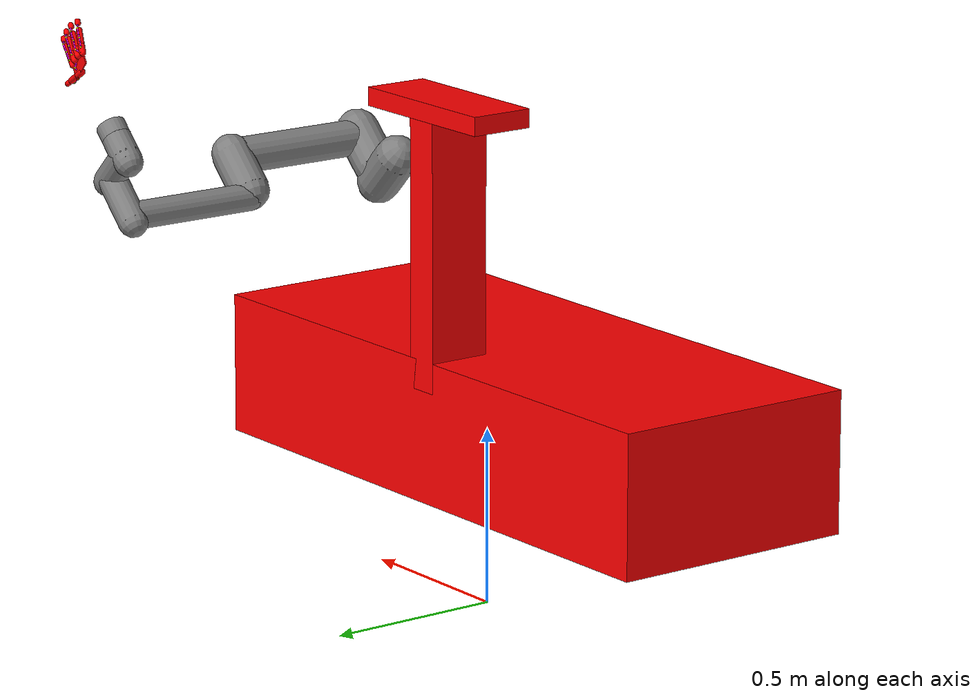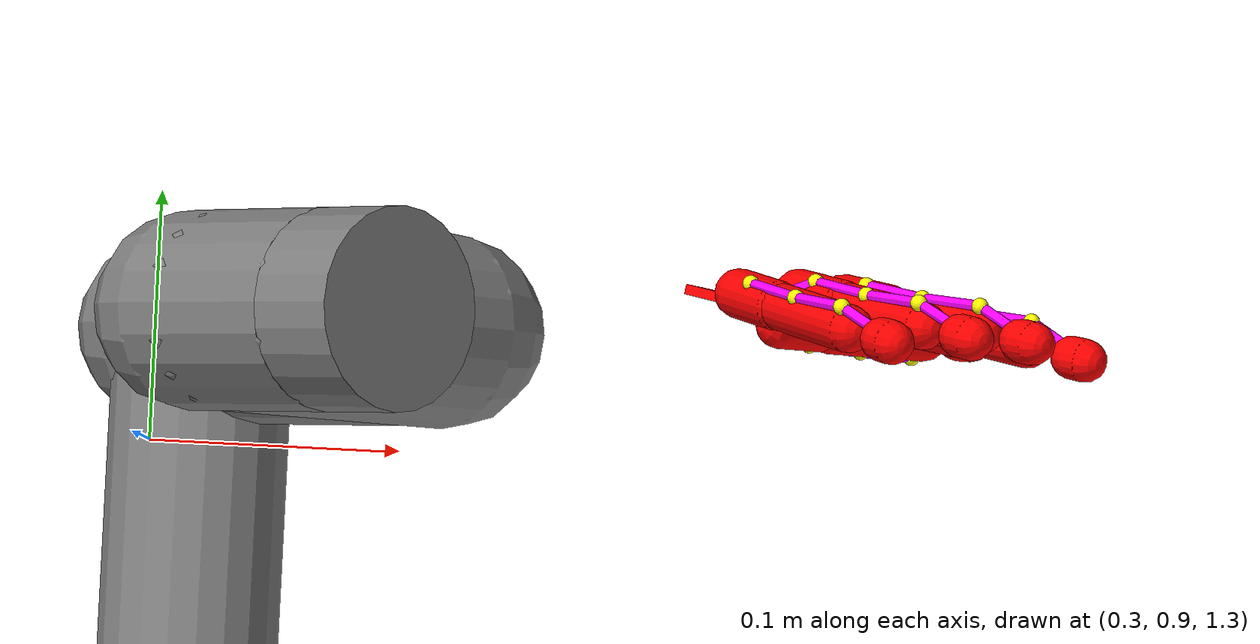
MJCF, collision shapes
<?xml version="1.0"?>

<mujoco model="UR5e_with_RH8D">
  <compiler angle="radian" meshdir="../meshes"/>
   <option timestep="0.001"
        integrator="implicitfast"
        solver="Newton"
        iterations="200"
        tolerance="1e-10"
        gravity="0 0 -9.81"
        cone="elliptic"
        impratio="1"
        noslip_iterations="0"
        noslip_tolerance="1e-6"/>
  <size njmax="8000" nconmax="1500"/>

  <!-- Default parameters for the simulation -->
  <default>
    <joint damping="0.04" frictionloss="0.0008" armature="0.002" limited="true" springref="0"/>
    <geom contype="1" conaffinity="1" condim="6"
          friction="1.0 0.1 0.1"
          solref="0.01 1.0"
          solimp="0.9 0.95 0.001"
          margin="0.0005"/>

    <!-- UR5e: default parameters: -->
    <default class="ur5e">
      <material specular="0.5" shininess="0.25"/>
      <joint axis="0 1 0" range="-6.28319 6.28319" armature="0.1"/>
      <general gaintype="fixed" biastype="affine" ctrlrange="-6.2831 6.2831" gainprm="2000" biasprm="0 -2000 -400"
        forcerange="-150 150"/>

      <default class="size3">
        <default class="size3_limited">
          <joint range="-3.1415 3.1415"/>
          <general ctrlrange="-3.1415 3.1415"/>
        </default>
      </default>

      <default class="size1">
        <general gainprm="500" biasprm="0 -500 -100" forcerange="-28 28"/>
      </default>

      <default class="visual">
        <geom type="mesh" contype="0" conaffinity="0" group="2"/>
      </default>

      <default class="collision">
        <geom type="capsule" group="3"/>
        <default class="eef_collision">
          <geom type="cylinder"/>
        </default>
      </default>

      <site size="0.001" rgba="0.5 0.5 0.5 0.3" group="4"/>
    </default>

    <!-- RH8D: default parameters: -->
    <default class="guide_site">
      <site size="0.0030" rgba="1 1 0 1"/>
    </default>

    <default class="anchor_site">
      <site size="0.0045" rgba="1 0.2 0.2 1"/>
    </default>

    <default class="visual_mesh">
      <geom type="mesh" contype="0" conaffinity="0"/>
    </default>

    <default class="hand_collision">
      <geom type="capsule"
            contype="2" conaffinity="5"
            condim="6"
            friction="0.5 0.05 0.05"
            solref="0.001 1"
            solimp="0.95 0.99 0.001"
            margin="0.0005"
            rgba="1 0 0 0"/>
    </default>
  </default>

  <!-- Asset definitions -->
  <asset>
    <!-- Table: material/meshes -->
    <material name="table" rgba="0.55 0.62 0.75 1.0" reflectance="0.18" shininess="0.1" specular="0.06"/>
    <mesh name="table_visual" file="table/visual/table_visual.stl" scale="0.001 0.001 0.001"/>
    <mesh name="table_collision" file="table/collision/table_collision.stl" scale="0.001 0.001 0.001"/>

    <!-- UR5e: materials/meshes -->
    <material class="ur5e" name="black" rgba="0.033 0.033 0.033 1"/>
    <material class="ur5e" name="jointgray" rgba="0.278 0.278 0.278 1"/>
    <material class="ur5e" name="linkgray" rgba="0.82 0.82 0.82 1"/>
    <material class="ur5e" name="urblue" rgba="0.49 0.678 0.8 1"/>
    <mesh file="ur5e/assets/base_0.obj"/>
    <mesh file="ur5e/assets/base_1.obj"/>
    <mesh file="ur5e/assets/shoulder_0.obj"/>
    <mesh file="ur5e/assets/shoulder_1.obj"/>
    <mesh file="ur5e/assets/shoulder_2.obj"/>
    <mesh file="ur5e/assets/upperarm_0.obj"/>
    <mesh file="ur5e/assets/upperarm_1.obj"/>
    <mesh file="ur5e/assets/upperarm_2.obj"/>
    <mesh file="ur5e/assets/upperarm_3.obj"/>
    <mesh file="ur5e/assets/forearm_0.obj"/>
    <mesh file="ur5e/assets/forearm_1.obj"/>
    <mesh file="ur5e/assets/forearm_2.obj"/>
    <mesh file="ur5e/assets/forearm_3.obj"/>
    <mesh file="ur5e/assets/wrist1_0.obj"/>
    <mesh file="ur5e/assets/wrist1_1.obj"/>
    <mesh file="ur5e/assets/wrist1_2.obj"/>
    <mesh file="ur5e/assets/wrist2_0.obj"/>
    <mesh file="ur5e/assets/wrist2_1.obj"/>
    <mesh file="ur5e/assets/wrist2_2.obj"/>
    <mesh file="ur5e/assets/wrist3.obj"/>

    <!-- RH8D: meshes -->
    <mesh name="base" file="rh8d/base.stl" scale="0.001 0.001 0.001"/>
    <mesh name="forearm" file="rh8d/forearm.stl" scale="0.001 0.001 0.001"/>
    <mesh name="palm_axis" file="rh8d/palm_axis.stl" scale="0.001 0.001 0.001"/>
    <mesh name="palm_assembly" file="rh8d/palm_assembly.stl" scale="0.001 0.001 0.001"/>
    <mesh name="thumb_base" file="rh8d/thumb_base.stl" scale="0.001 0.001 0.001"/>
    <mesh name="thumb_phalanx" file="rh8d/thumb_phalanx.stl" scale="0.001 0.001 0.001"/>
    <mesh name="tip" file="rh8d/tip.stl" scale="0.001 0.001 0.001"/>
    <mesh name="phalanx" file="rh8d/phalanx.stl" scale="0.001 0.001 0.001"/>
  </asset>

  <!-- World body definitions -->
  <worldbody>
    <light name="spotlight" mode="targetbodycom" target="wrist_2_link" pos="0 -1 2"/>

    <!-- Table: -->
    <body name="table" pos="0 0 0.73" euler="0 0 0">
      <geom name="table_visual" type="mesh" mesh="table_visual" material="table" contype="0" conaffinity="0"
            group="1"/>
      <geom name="table_base_collision" type="box" pos="0 -0.135 -0.2" size="0.90 0.36 0.2" rgba="1 0 0 0"
            contype="1" conaffinity="1"/>
      <geom name="table_column_collision" type="box" pos="0 0.135 0.315" size="0.05 0.09 0.400" rgba="1 0 0 0"
            contype="1" conaffinity="1"/>
      <geom name="table_top_collision" type="box" pos="0.0 0.135 0.69" size="0.24 0.091 0.026" rgba="1 0 0 0"
            contype="1" conaffinity="1"/>

      <!-- UR5e: -->
      <body name="ur5e_mounting_point" pos="0.191189 0.13475 0.555131" quat="-0.270598 -0.653281 -0.653281 -0.270598">
        <body name="base" quat="1 0 0 0" childclass="ur5e">
        <inertial mass="4.0" pos="0 0 0" diaginertia="0.00443333156 0.00443333156 0.0072"/>
        <geom mesh="base_0" material="black" class="visual"/>
        <geom mesh="base_1" material="jointgray" class="visual"/>
        <body name="shoulder_link" pos="0 0 0.163">
          <inertial mass="3.7" pos="0 0 0" diaginertia="0.0102675 0.0102675 0.00666"/>
          <joint name="shoulder_pan_joint" class="size3" axis="0 0 1"/>
          <geom mesh="shoulder_0" material="urblue" class="visual"/>
          <geom mesh="shoulder_1" material="black" class="visual"/>
          <geom mesh="shoulder_2" material="jointgray" class="visual"/>
          <geom class="collision" size="0.06 0.06" pos="0 0 -0.04"/>
          <body name="upper_arm_link" pos="0 0.138 0" quat="1 0 1 0">
            <inertial mass="8.393" pos="0 0 0.2125" diaginertia="0.133886 0.133886 0.0151074"/>
            <joint name="shoulder_lift_joint" class="size3"/>
            <geom mesh="upperarm_0" material="linkgray" class="visual"/>
            <geom mesh="upperarm_1" material="black" class="visual"/>
            <geom mesh="upperarm_2" material="jointgray" class="visual"/>
            <geom mesh="upperarm_3" material="urblue" class="visual"/>
            <geom class="collision" pos="0 -0.04 0" quat="1 1 0 0" size="0.06 0.06"/>
            <geom class="collision" size="0.05 0.2" pos="0 0 0.2"/>
            <body name="forearm_link" pos="0 -0.131 0.425">
              <inertial mass="2.275" pos="0 0 0.196" diaginertia="0.0311796 0.0311796 0.004095"/>
              <joint name="elbow_joint" class="size3_limited"/>
              <geom mesh="forearm_0" material="urblue" class="visual"/>
              <geom mesh="forearm_1" material="linkgray" class="visual"/>
              <geom mesh="forearm_2" material="black" class="visual"/>
              <geom mesh="forearm_3" material="jointgray" class="visual"/>
              <geom class="collision" pos="0 0.08 0" quat="1 1 0 0" size="0.055 0.06"/>
              <geom class="collision" size="0.038 0.19" pos="0 0 0.2"/>
              <body name="wrist_1_link" pos="0 0 0.392" quat="1 0 1 0">
                <inertial mass="1.219" pos="0 0.127 0" diaginertia="0.0025599 0.0025599 0.0021942"/>
                <joint name="wrist_1_joint" class="size1"/>
                <geom mesh="wrist1_0" material="black" class="visual"/>
                <geom mesh="wrist1_1" material="urblue" class="visual"/>
                <geom mesh="wrist1_2" material="jointgray" class="visual"/>
                <geom class="collision" pos="0 0.05 0" quat="1 1 0 0" size="0.04 0.07"/>
                <body name="wrist_2_link" pos="0 0.127 0">
                  <inertial mass="1.219" pos="0 0 0.1" diaginertia="0.0025599 0.0025599 0.0021942"/>
                  <joint name="wrist_2_joint" axis="0 0 1" class="size1"/>
                  <geom mesh="wrist2_0" material="black" class="visual"/>
                  <geom mesh="wrist2_1" material="urblue" class="visual"/>
                  <geom mesh="wrist2_2" material="jointgray" class="visual"/>
                  <geom class="collision" size="0.04 0.06" pos="0 0 0.04"/>
                  <geom class="collision" pos="0 0.02 0.1" quat="1 1 0 0" size="0.04 0.04"/>
                  <body name="wrist_3_link" pos="0 0 0.1">
                    <inertial mass="0.1889" pos="0 0.0771683 0" quat="1 0 0 1" diaginertia="0.000132134 9.90863e-05 9.90863e-05"/>
                    <joint name="wrist_3_joint" class="size1"/>
                    <geom material="linkgray" mesh="wrist3" class="visual"/>
                    <geom class="eef_collision" pos="0 0.08 0" quat="1 1 0 0" size="0.04 0.02"/>
                    <site name="attachment_site" pos="0 0.1 0" quat="-1 1 0 0"/>

                    <!-- RH8D: -->
                    <body name="rh8d_mounting_point" pos="0 0.1 0" quat="0 -0.707107 0 -0.707107">
                      <geom class="visual_mesh" pos="0 0 0" quat="1 0 0 0" rgba="0.74902 0.74902 0.74902 1" mesh="base"/>
                      <body name="forearm:1" pos="0 0 0" quat="1 0 0 0">
                        <inertial pos="1.87963e-07 -0.0656522 -0.00271352" quat="0.498346 0.501671 -0.501575 0.498397"
                                  mass="0.740385" diaginertia="0.00146215 0.00130925 0.000680264"/>
                        <joint name="forearm:1--base:1" axis="0 -1 0" range="-1.5708 1.5708" damping="0.08" frictionloss="0.005"/>
                        <geom class="visual_mesh" rgba="0.74902 0.74902 0.74902 1" mesh="forearm"/>

                        <body name="palm_axis:1" pos="0 -0.165 -0.01275">
                          <inertial pos="0 0.008585 0.0125"
                                    quat="0 0.707107 0 0.707107"
                                    mass="0.0509809"
                                    diaginertia="1.88432e-05 1.37535e-05 9.79681e-06"/>
                          <joint name="palm_axis:1--forearm:1" axis="0 0 1" range="-1.5708 1.5708" damping="0.08" frictionloss="0.005"/>
                          <geom class="visual_mesh" pos="0 0 0.0125" quat="1 0 0 0" rgba="0.74902 0.74902 0.74902 1" mesh="palm_axis"/>

                          <body name="palm_assembly:1" pos="0.0265 0 0.0125" quat="0.764847 0.63682 0.022682 -0.094633">
                            <inertial pos="-0.0428433 -0.00466111 0.0454719"
                                      quat="0.48276 0.542533 0.210306 0.654502"
                                      mass="0.0820994"
                                      diaginertia="9.95214e-05 8.17343e-05 3.63353e-05"/>
                            <joint name="palm_assembly:1--palm_axis:1"
                                  axis="-0.98106 -0.173648 0.0858319"
                                  range="-0.785398 0.785398"
                                  damping="0.08" frictionloss="0.005"/>
                            <geom class="visual_mesh"
                                  pos="-0.0586362 -0.00572413 0.0653212"
                                  quat="1 0 0 0"
                                  rgba="0.74902 0.74902 0.74902 1"
                                  mesh="palm_assembly"/>

                            <!-- Palm collision -->
                            <geom name="collision_palm" class="hand_collision" type="box"
                                  pos="-0.03 -0.01 0.055"
                                  euler="-1.57 -0.1 0.1"
                                  size="0.04 0.035 0.0018"
                                  rgba="1 0 0 0"/>

                            <!-- Tendon origins -->
                            <site name="palm_flexor_origin_idx"        class="guide_site" pos="-0.052 -0.009 0.0685"/>
                            <site name="palm_flexor_origin_mid"        class="guide_site" pos="-0.032 -0.009 0.068"/>
                            <site name="palm_flexor_origin_ring_small" class="guide_site" pos=" 0.006 -0.009 0.053"/>
                            <site name="palm_flexor_origin_thumb"      class="guide_site" pos="-0.034 -0.007 0.07"/>

                            <site name="palm_range_site" pos="-0.0210 -0.009 0.0475" euler="-1.45 -0.2 0.5" size="0.003" rgba="0 0 1 1"/>
                            <!-- Thumb -->
                            <body name="Thumb_axis" pos="-0.0403593 -0.0128548 0.0384218" quat="0.488081 0.532913 -0.239627 -0.648352">
                              <inertial pos="7.36614e-07 -0.0127284 0.0077996"
                                        quat="0.90682 0.421512 -0.00114761 0.00208364"
                                        mass="0.00876232"
                                        diaginertia="7.9766e-07 7.76944e-07 4.56571e-07"/>
                              <joint name="Thumb_axis--palm_assembly:1" axis="0 -0.866025 0.5" range="-0.001 1.5708" damping="0.60" frictionloss="0.005"/>
                              <geom class="visual_mesh" pos="-2.0491e-07 -0.0143541 0.0211785" rgba="0.74902 0.74902 0.74902 1" mesh="thumb_base"/>

                              <site name="th_guide_p" class="guide_site" pos="0.000 0.0060 0.0120"/>

                              <body name="Thumb_Methacarpal" pos="-0.00512514 -0.0143543 0.0211784" quat="0 -1 0 0">
                                <inertial pos="0.00506187 -0.00020374 -0.0087338"
                                          quat="0.707662 0.0382635 -0.0379957 0.70449"
                                          mass="0.00441372"
                                          diaginertia="4.34031e-07 4.06754e-07 1.50155e-07"/>
                                <joint name="Thumb_Methacarpal--Thumb_axis" axis="-1 0 0" range="0 1.5708" damping="0.60" stiffness="0.65"/>
                                <geom class="visual_mesh" pos="0.00506254 1.23613e-07 -0.010793" rgba="0.74902 0.74902 0.74902 1" mesh="thumb_phalanx"/>
                                <geom name="collision_thumb_meta" class="hand_collision" type="capsule"
                                      fromto="0.005 0 0.002   0.005 0 0.026" size="0.009" rgba="1 0 0 0"/>

                                <site name="th_guide_m" class="guide_site" pos="0.000 0.0060 0.0100"/>

                                <body name="Thumb_Proximal" pos="-0.000562562 -2.35897e-07 -0.0215861">
                                  <inertial pos="0.00506186 -0.000203737 -0.0087338"
                                            quat="0.707662 0.0382635 -0.0379957 0.70449"
                                            mass="0.00441372"
                                            diaginertia="4.34031e-07 4.06754e-07 1.50155e-07"/>
                                  <joint name="Thumb_Proximal--Thumb_Methacarpal" axis="-1 0 0" range="0 1.5708" damping="0.58" stiffness="0.55"/>
                                  <geom class="visual_mesh" pos="0.00506253 1.26601e-07 -0.010793" rgba="0.74902 0.74902 0.74902 1" mesh="thumb_phalanx"/>
                                  <geom name="collision_thumb_prox" class="hand_collision" type="capsule"
                                        fromto="0.005 0 -0.016   0.005 0 0.026" size="0.009" rgba="1 0 0 0"/>

                                  <site name="th_guide_d" class="guide_site" pos="0.000 0.0075 0.0080"/>

                                  <body name="Thumb_Distal" pos="-6.23674e-05 6.16563e-07 -0.0215858">
                                    <inertial pos="0.00560256 -0.00262057 -0.0121248"
                                              quat="0.634633 -0.0915234 0.0968285 0.761242"
                                              mass="0.00650951"
                                              diaginertia="5.45458e-07 5.01126e-07 3.14326e-07"/>
                                    <joint name="Thumb_Distal--Thumb_Proximal" axis="-1 0 0" range="0 1.5708" damping="0.56" stiffness="0.45"/>
                                    <geom class="visual_mesh" pos="0.00506251 -1.31623e-07 0" rgba="0.74902 0.74902 0.74902 1" mesh="tip"/>

                                    <site name="th_guide_distal" class="guide_site" pos="0.000 0.0090 0.0060"/>
                                    <site name="th_anchor" class="anchor_site" pos="0.0045 0.0015 -0.012"/>

                                    <body name="Thumb_TipDummy" pos="0 0 0">
                                      <inertial pos="0 0 0" mass="1e-6" diaginertia="1e-12 1e-12 1e-12"/>
                                      <geom name="collision_thumb_tip" class="hand_collision" type="capsule"
                                            fromto="0.005 0 -0.016   0.005 0 -0.01" size="0.00778" rgba="1 0 0 0"/>
                                      <site name="thumb_tip_force_site" pos="0.005 -0.0015 -0.014" quat="0 0 1 1" size="0.00778" rgba="1 0 0 0"/>
                                    </body>
                                  </body>
                                </body>
                              </body>
                            </body>

                            <!-- Index Finger -->
                            <body name="Index_Proximal" pos="-0.0482113 -0.0207166 0.0857786" quat="0 1 0 0">
                              <inertial pos="-0.00506278 -0.000180346 -0.0109169"
                                        quat="0.709609 0.0289913 -0.0286909 0.703414"
                                        mass="0.00525864"
                                        diaginertia="5.65636e-07 5.33996e-07 1.82249e-07"/>
                              <joint name="Index_Proximal--palm_assembly:1" axis="-1 0 0" range="0 1.5708" damping="0.60" stiffness="0.65"/>
                              <geom class="visual_mesh" pos="-0.00506263 -1.44878e-07 -0.0129367" rgba="0.74902 0.74902 0.74902 1" mesh="phalanx"/>
                              <geom name="collision_idx_prox" class="hand_collision" type="capsule"
                                    fromto="-0.005 0 0.002   -0.005 0 0.026" size="0.00778" rgba="1 0 0 0"/>

                              <site name="idx_guide_p" class="guide_site" pos="0.000 0.0065 0.0120"/>

                              <body name="Index_Middle" pos="6.24645e-05 0 -0.0258748">
                                <inertial pos="-0.00506279 -0.000180375 -0.0109169"
                                          quat="0.709609 0.0289913 -0.0286909 0.703414"
                                          mass="0.00525864"
                                          diaginertia="5.65636e-07 5.33996e-07 1.82249e-07"/>
                                <joint name="Index_Middle--Index_Proximal" axis="-1 0 0" range="0 1.5708" damping="0.58" stiffness="0.55"/>
                                <geom class="visual_mesh" pos="-0.00506242 0 -0.0129376" rgba="0.74902 0.74902 0.74902 1" mesh="phalanx"/>
                                <geom name="collision_idx_mid" class="hand_collision" type="capsule"
                                      fromto="-0.005 0 -0.016   -0.005 0 0.026" size="0.00778" rgba="1 0 0 0"/>

                                <site name="idx_guide_m" class="guide_site" pos="0.000 0.0065 0.0100"/>

                                <body name="Index_Distal" pos="6.2463e-05 0 -0.0258748">
                                  <inertial pos="-0.00452224 -0.00262003 -0.0121245"
                                            quat="0.634633 -0.0915234 0.0968285 0.761242"
                                            mass="0.00650951"
                                            diaginertia="5.45458e-07 5.01126e-07 3.14326e-07"/>
                                  <joint name="Index_Distal--Index_Middle" axis="-1 0 0" range="0 1.5708" damping="0.56" stiffness="0.45"/>
                                  <geom class="visual_mesh" pos="-0.00506253 0 4.01497e-07" rgba="0.74902 0.74902 0.74902 1" mesh="tip"/>

                                  <site name="idx_guide_d" class="guide_site" pos="0.000 0.0085 0.0080"/>
                                  <site name="idx_anchor" class="anchor_site" pos="-0.0045 0.0015 -0.012"/>

                                  <body name="Index_TipDummy" pos="0 0 0">
                                    <inertial pos="0 0 0" mass="1e-6" diaginertia="1e-12 1e-12 1e-12"/>
                                    <geom name="collision_idx_tip" class="hand_collision" type="capsule"
                                          fromto="-0.005 0 -0.016   -0.005 0 -0.01" size="0.00778" rgba="1 0 0 0"/>
                                    <site name="index_tip_force_site" pos="-0.005 -0.002 -0.014" quat="0 0 1 1" size="0.00725" rgba="1 0 0 0"/>
                                  </body>
                                </body>
                              </body>
                            </body>

                            <!-- Middle Finger -->
                            <body name="Middle_Proximal" pos="-0.0230982 -0.0192207 0.084179" quat="0.00190282 -0.998097 -0.0435779 0.043578">
                              <inertial pos="-0.00506279 -0.000180392 -0.0109167"
                                        quat="0.709609 0.0289913 -0.0286909 0.703414"
                                        mass="0.00525864"
                                        diaginertia="5.65636e-07 5.33996e-07 1.82249e-07"/>
                              <joint name="Middle_Proximal--palm_assembly:1" axis="-1 0 0" range="0 1.5708" damping="0.60" stiffness="0.65"/>
                              <geom class="visual_mesh" pos="-0.00506247 0 -0.0129372" rgba="0.74902 0.74902 0.74902 1" mesh="phalanx"/>
                              <geom name="collision_mid_prox" class="hand_collision" type="capsule"
                                    fromto="-0.005 0 0.002   -0.005 0 0.026" size="0.009" rgba="1 0 0 0"/>

                              <site name="mid_guide_p" class="guide_site" pos="0.000 0.0065 0.0120"/>

                              <body name="Middle_Middle" pos="6.24843e-05 -1.52847e-07 -0.0258742">
                                <inertial pos="-0.00506283 -0.000180213 -0.0109177"
                                          quat="0.709609 0.0289913 -0.0286909 0.703414"
                                          mass="0.00525864"
                                          diaginertia="5.65636e-07 5.33996e-07 1.82249e-07"/>
                                <joint name="Middle_Middle--Middle_Proximal" axis="-1 0 0" range="0 1.5708" damping="0.58" stiffness="0.55"/>
                                <geom class="visual_mesh" pos="-0.00506251 1.09878e-07 -0.0129382" rgba="0.74902 0.74902 0.74902 1" mesh="phalanx"/>
                                <geom name="collision_mid_mid" class="hand_collision" type="capsule"
                                      fromto="-0.005 0 -0.016   -0.005 0 0.026" size="0.0085" rgba="1 0 0 0"/>

                                <site name="mid_guide_m" class="guide_site" pos="0.000 0.0065 0.0100"/>

                                <body name="Middle_Distal" pos="6.24995e-05 0 -0.0258752">
                                  <inertial pos="-0.00452227 -0.00261993 -0.0121249"
                                            quat="0.634633 -0.0915234 0.0968285 0.761242"
                                            mass="0.00650951"
                                            diaginertia="5.45458e-07 5.01126e-07 3.14326e-07"/>
                                  <joint name="Middle_Distal--Middle_Middle" axis="-1 0 0" range="0 1.5708" damping="0.56" stiffness="0.45"/>
                                  <geom class="visual_mesh" pos="-0.00506248 0 -6.09795e-07" rgba="0.74902 0.74902 0.74902 1" mesh="tip"/>

                                  <site name="mid_guide_d" class="guide_site" pos="0.000 0.0085 0.0080"/>
                                  <site name="mid_anchor" class="anchor_site" pos="-0.0045 0.0015 -0.012"/>

                                  <body name="Middle_TipDummy" pos="0 0 0">
                                    <inertial pos="0 0 0" mass="1e-6" diaginertia="1e-12 1e-12 1e-12"/>
                                    <geom name="collision_mid_tip" class="hand_collision" type="capsule"
                                          fromto="-0.005 0 -0.016   -0.005 0 -0.01" size="0.00778" rgba="1 0 0 0"/>
                                    <site name="middle_tip_force_site" pos="-0.005 -0.002 -0.014" quat="0 0 1 1" size="0.00725" rgba="1 0 0 0"/>
                                  </body>
                                </body>
                              </body>
                            </body>

                            <!-- Ring Finger -->
                            <body name="Ring_Proximal" pos="0.000973217 -0.0139442 0.0805959" quat="-7.86943e-05 -0.987791 -0.129626 0.0864102">
                              <inertial pos="-0.00506284 -0.000180314 -0.0109171"
                                        quat="0.709609 0.0289913 -0.0286909 0.703414"
                                        mass="0.00525864"
                                        diaginertia="5.65636e-07 5.33996e-07 1.82249e-07"/>
                              <joint name="Ring_Proximal--palm_assembly:1" axis="-1 0 0" range="0 1.5708" damping="0.60" stiffness="0.65"/>
                              <geom class="visual_mesh" pos="-0.00506248 0 -0.0129378" rgba="0.74902 0.74902 0.74902 1" mesh="phalanx"/>
                              <geom name="collision_ring_prox" class="hand_collision" type="capsule"
                                    fromto="-0.005 0 0.002   -0.005 0 0.026" size="0.009" rgba="1 0 0 0"/>

                              <site name="ring_guide_p" class="guide_site" pos="0.000 0.0065 0.0120"/>

                              <body name="Ring_Middle" pos="6.24428e-05 0 -0.0258755">
                                <inertial pos="-0.00506274 -0.000180305 -0.0109171"
                                          quat="0.709609 0.0289913 -0.0286909 0.703414"
                                          mass="0.00525864"
                                          diaginertia="5.65636e-07 5.33996e-07 1.82249e-07"/>
                                <joint name="Ring_Middle--Ring_Proximal" axis="-1 0 0" range="0 1.5708" damping="0.58" stiffness="0.35"/>
                                <geom class="visual_mesh" pos="-0.00506238 -1.10193e-07 -0.0129369" rgba="0.74902 0.74902 0.74902 1" mesh="phalanx"/>
                                <geom name="collision_ring_mid" class="hand_collision" type="capsule"
                                      fromto="-0.005 0 -0.016   -0.005 0 0.026" size="0.0085" rgba="1 0 0 0"/>

                                <site name="ring_guide_m" class="guide_site" pos="0.000 0.0065 0.0100"/>

                                <body name="Ring_Distal" pos="6.25413e-05 0 -0.0258745">
                                  <inertial pos="-0.00452232 -0.00261989 -0.0121254"
                                            quat="0.634633 -0.0915234 0.0968285 0.761242"
                                            mass="0.00650951"
                                            diaginertia="5.45458e-07 5.01126e-07 3.14326e-07"/>
                                  <joint name="Ring_Distal--Ring_Middle" axis="-1 0 0" range="0 1.5708" damping="0.56" stiffness="0.35"/>
                                  <geom class="visual_mesh" pos="-0.00506254 1.36101e-07 -7.35729e-07" rgba="0.74902 0.74902 0.74902 1" mesh="tip"/>

                                  <site name="ring_guide_d" class="guide_site" pos="0.000 0.0085 0.0080"/>
                                  <site name="ring_anchor" class="anchor_site" pos="-0.0045 0.0015 -0.012"/>

                                  <body name="Ring_TipDummy" pos="0 0 0">
                                    <inertial pos="0 0 0" mass="1e-6" diaginertia="1e-12 1e-12 1e-12"/>
                                    <geom name="collision_ring_tip" class="hand_collision" type="capsule"
                                          fromto="-0.005 0 -0.016   -0.005 0 -0.01" size="0.00778" rgba="1 0 0 0"/>
                                    <site name="ring_tip_force_site" pos="-0.005 -0.002 -0.014" quat="0 0 1 1" size="0.00725" rgba="1 0 0 0"/>
                                  </body>
                                </body>
                              </body>
                            </body>

                            <!-- Small Finger -->
                            <body name="Small_Proximal" pos="0.0235505 -0.00577399 0.0699045" quat="-0.00757449 -0.976383 -0.173483 0.128543">
                              <inertial pos="-0.00506278 -0.00018031 -0.0109171"
                                        quat="0.709609 0.0289913 -0.0286909 0.703414"
                                        mass="0.00525864"
                                        diaginertia="5.65636e-07 5.33996e-07 1.82249e-07"/>
                              <joint name="Small_Proximal--palm_assembly:1" axis="-1 0 0" range="0 1.5708" damping="0.60" stiffness="0.3"/>
                              <geom class="visual_mesh" pos="-0.00506256 0 -0.0129378" rgba="0.74902 0.74902 0.74902 1" mesh="phalanx"/>
                              <geom name="collision_sml_prox" class="hand_collision" type="capsule"
                                    fromto="-0.005 0 0.002   -0.005 0 0.026" size="0.009" rgba="1 0 0 0"/>

                              <site name="sml_guide_p" class="guide_site" pos="0.000 0.0065 0.0120"/>

                              <body name="Small_Middle" pos="6.24423e-05 0 -0.0258752">
                                <inertial pos="-0.00506278 -0.00018031 -0.0109171"
                                          quat="0.709609 0.0289913 -0.0286909 0.703414"
                                          mass="0.00525864"
                                          diaginertia="5.65636e-07 5.33996e-07 1.82249e-07"/>
                                <joint name="Small_Middle--Small_Proximal" axis="-1 0 0" range="0 1.5708" damping="0.58" stiffness="0.1"/>
                                <geom class="visual_mesh" pos="-0.00506255 0 -0.0129378" rgba="0.74902 0.74902 0.74902 1" mesh="phalanx"/>
                                <geom name="collision_sml_mid" class="hand_collision" type="capsule"
                                      fromto="-0.005 0 -0.016   -0.005 0 0.026" size="0.0085" rgba="1 0 0 0"/>

                                <site name="sml_guide_m" class="guide_site" pos="0.000 0.0065 0.0100"/>

                                <body name="Small_Distal" pos="6.2445e-05 0 -0.0258753">
                                  <inertial pos="-0.00452232 -0.00262 -0.0121245"
                                            quat="0.634633 -0.0915234 0.0968285 0.761242"
                                            mass="0.00650951"
                                            diaginertia="5.45458e-07 5.01126e-07 3.14326e-07"/>
                                  <joint name="Small_Distal--Small_Middle" axis="-1 0 0" range="0 1.5708" damping="0.56" stiffness="0.15"/>
                                  <geom class="visual_mesh" pos="-0.00506244 0 0" rgba="0.74902 0.74902 0.74902 1" mesh="tip"/>

                                  <site name="sml_guide_d" class="guide_site" pos="0.000 0.0085 0.0080"/>
                                  <site name="sml_anchor" class="anchor_site" pos="-0.0045 0.0015 -0.012"/>

                                  <body name="Small_TipDummy" pos="0 0 0">
                                    <inertial pos="0 0 0" mass="1e-6" diaginertia="1e-12 1e-12 1e-12"/>
                                    <geom name="collision_sml_tip" class="hand_collision" type="capsule"
                                          fromto="-0.005 0 -0.016   -0.005 0 -0.01" size="0.00778" rgba="1 0 0 0"/>
                                    <site name="small_tip_force_site" pos="-0.005 -0.002 -0.014" quat="0 0 1 1" size="0.00725" rgba="1 0 0 0"/>
                                  </body>
                                </body>
                              </body>
                            </body>
                          </body>
                        </body>
                      </body>
                    </body>
                  </body>
                </body>
              </body>
            </body>
          </body>
        </body>
        </body>
      </body>
    </body>
  </worldbody>

  <!-- RH8D: Spatial tendons -->
  <tendon>
    <spatial name="idx_flex_spatial" rgba="1 0 1 1" width="0.002" damping="6" frictionloss="0.3">
      <site site="palm_flexor_origin_idx"/>
      <site site="idx_guide_p"/>
      <site site="idx_guide_m"/>
      <site site="idx_guide_d"/>
      <site site="idx_anchor"/>
    </spatial>

    <spatial name="mid_flex_spatial" rgba="1 0 1 1" width="0.002" damping="6" frictionloss="0.3">
      <site site="palm_flexor_origin_mid"/>
      <site site="mid_guide_p"/>
      <site site="mid_guide_m"/>
      <site site="mid_guide_d"/>
      <site site="mid_anchor"/>
    </spatial>

    <spatial name="ring_flex_spatial" rgba="1 0 1 1" width="0.002" damping="6" frictionloss="0.3">
      <site site="palm_flexor_origin_ring_small"/>
      <site site="ring_guide_p"/>
      <site site="ring_guide_m"/>
      <site site="ring_guide_d"/>
      <site site="ring_anchor"/>
    </spatial>

    <spatial name="sml_flex_spatial" rgba="1 0 1 1" width="0.002" damping="6" frictionloss="0.3">
      <site site="palm_flexor_origin_ring_small"/>
      <site site="sml_guide_p"/>
      <site site="sml_guide_m"/>
      <site site="sml_guide_d"/>
      <site site="sml_anchor"/>
    </spatial>

    <spatial name="th_flex_spatial" rgba="1 0 1 1" width="0.002" damping="6" frictionloss="0.3">
      <site site="palm_flexor_origin_thumb"/>
      <site site="th_guide_p"/>
      <site site="th_guide_m"/>
      <site site="th_guide_d"/>
      <site site="th_guide_distal"/>
      <site site="th_anchor"/>
    </spatial>
  </tendon>

  <!-- RH8D: ring and small finger are driven by the same actuator -->
  <equality>
    <tendon tendon1="sml_flex_spatial" tendon2="ring_flex_spatial"
            polycoef="0 1 0 0 0"
            solref="0.08 1.0"
            solimp="0.90 0.99 0.002"/>
  </equality>

  <!-- Actuators for UR5e and RH8D -->
  <actuator>
    <!-- UR5e: actuators -->
    <general class="size3" name="shoulder_pan" joint="shoulder_pan_joint"/>
    <general class="size3" name="shoulder_lift" joint="shoulder_lift_joint"/>
    <general class="size3_limited" name="elbow" joint="elbow_joint"/>
    <general class="size1" name="wrist_1" joint="wrist_1_joint"/>
    <general class="size1" name="wrist_2" joint="wrist_2_joint"/>
    <general class="size1" name="wrist_3" joint="wrist_3_joint"/>

    <!-- RH8D: wrist/palm actuators -->
    <position name="pos_forearm" joint="forearm:1--base:1"
              kp="5" kv="1" forcelimited="true" forcerange="-5 5"
              ctrllimited="true" ctrlrange="-1.5708 1.5708"/>
    <position name="pos_palm_axis" joint="palm_axis:1--forearm:1"
              kp="5" kv="1" forcelimited="true" forcerange="-5 5"
              ctrllimited="true" ctrlrange="-1.5708 1.5708"/>
    <position name="pos_palm_assembly" joint="palm_assembly:1--palm_axis:1"
              kp="5" kv="1" forcelimited="true" forcerange="-5 5"
              ctrllimited="true" ctrlrange="-0.785398 0.785398"/>
    <position name="pos_thumb_axis" joint="Thumb_axis--palm_assembly:1"
              kp="5" kv="1" forcelimited="true" forcerange="-5 5"
              ctrllimited="true" ctrlrange="0.0 1.5708"/>

    <!-- RH8D: Tendon driven finger's actuators -->
    <position name="pos_index_tendon" tendon="idx_flex_spatial"
              kp="80" dampratio="0.5" forcelimited="true" forcerange="0 180"
              ctrllimited="true" ctrlrange="0.0 1.5708"/>
    <position name="pos_middle_tendon" tendon="mid_flex_spatial"
              kp="80" dampratio="0.5" forcelimited="true" forcerange="0 180"
              ctrllimited="true" ctrlrange="0.0 1.5708"/>
    <position name="pos_ring_small_tendon" tendon="ring_flex_spatial"
              kp="85" dampratio="0.5" forcelimited="true" forcerange="0 180"
              ctrllimited="true" ctrlrange="0.0 1.5708"/>
    <position name="pos_thumb_tendon" tendon="th_flex_spatial"
              kp="60" dampratio="0.5" forcelimited="true" forcerange="0 180"
              ctrllimited="true" ctrlrange="0.0 1.5708 "/>
  </actuator>

  <!-- RH8D: Sensors including TOF and force sensors -->
  <sensor>
    <!-- Tendon positions -->
    <tendonpos name="len_index"  tendon="idx_flex_spatial"/>
    <tendonpos name="len_middle" tendon="mid_flex_spatial"/>
    <tendonpos name="len_ring"   tendon="ring_flex_spatial"/>
    <tendonpos name="len_small"  tendon="sml_flex_spatial"/>
    <tendonpos name="len_thumb"  tendon="th_flex_spatial"/>

    <!-- Tendon Actuator forces -->
    <actuatorfrc name="frc_index"  actuator="pos_index_tendon"/>
    <actuatorfrc name="frc_middle" actuator="pos_middle_tendon"/>
    <actuatorfrc name="frc_ring"   actuator="pos_ring_small_tendon"/>
    <actuatorfrc name="frc_thumb"  actuator="pos_thumb_tendon"/>

    <!-- Palm distance sensor -->
    <rangefinder name="palm_range" site="palm_range_site"/>

    <!-- 3-axis fingertip force sensors -->
    <force name="thumb_tip_force"  site="thumb_tip_force_site"/>
    <force name="index_tip_force"  site="index_tip_force_site"/>
    <force name="middle_tip_force" site="middle_tip_force_site"/>
    <force name="ring_tip_force"   site="ring_tip_force_site"/>
    <force name="small_tip_force"  site="small_tip_force_site"/>
  </sensor>

  <!-- RH8D: Contact excludes -->
  <contact>
    <exclude body1="forearm:1" body2="palm_axis:1"/>
    <exclude body1="palm_axis:1" body2="palm_assembly:1"/>
    <exclude body1="Thumb_axis" body2="Thumb_Methacarpal"/>
    <exclude body1="Thumb_Methacarpal" body2="Thumb_Proximal"/>
    <exclude body1="Thumb_Proximal" body2="Thumb_Distal"/>
    <exclude body1="Index_Proximal" body2="Index_Middle"/>
    <exclude body1="Index_Middle" body2="Index_Distal"/>
    <exclude body1="Middle_Proximal" body2="Middle_Middle"/>
    <exclude body1="Middle_Middle" body2="Middle_Distal"/>
    <exclude body1="Ring_Proximal" body2="Ring_Middle"/>
    <exclude body1="Ring_Middle" body2="Ring_Distal"/>
    <exclude body1="Small_Proximal" body2="Small_Middle"/>
    <exclude body1="Small_Middle" body2="Small_Distal"/>
    <exclude body1="palm_assembly:1" body2="Index_Proximal"/>
    <exclude body1="palm_assembly:1" body2="Index_Middle"/>
    <exclude body1="palm_assembly:1" body2="Index_Distal"/>
    <exclude body1="palm_assembly:1" body2="Middle_Proximal"/>
    <exclude body1="palm_assembly:1" body2="Middle_Middle"/>
    <exclude body1="palm_assembly:1" body2="Middle_Distal"/>
    <exclude body1="palm_assembly:1" body2="Ring_Proximal"/>
    <exclude body1="palm_assembly:1" body2="Ring_Middle"/>
    <exclude body1="palm_assembly:1" body2="Ring_Distal"/>
    <exclude body1="palm_assembly:1" body2="Small_Proximal"/>
    <exclude body1="palm_assembly:1" body2="Small_Middle"/>
    <exclude body1="palm_assembly:1" body2="Small_Distal"/>
    <exclude body1="palm_assembly:1" body2="Thumb_axis"/>
    <exclude body1="palm_assembly:1" body2="Thumb_Methacarpal"/>
    <exclude body1="palm_assembly:1" body2="Thumb_Proximal"/>
    <exclude body1="palm_assembly:1" body2="Thumb_Distal"/>
  </contact>

</mujoco>
